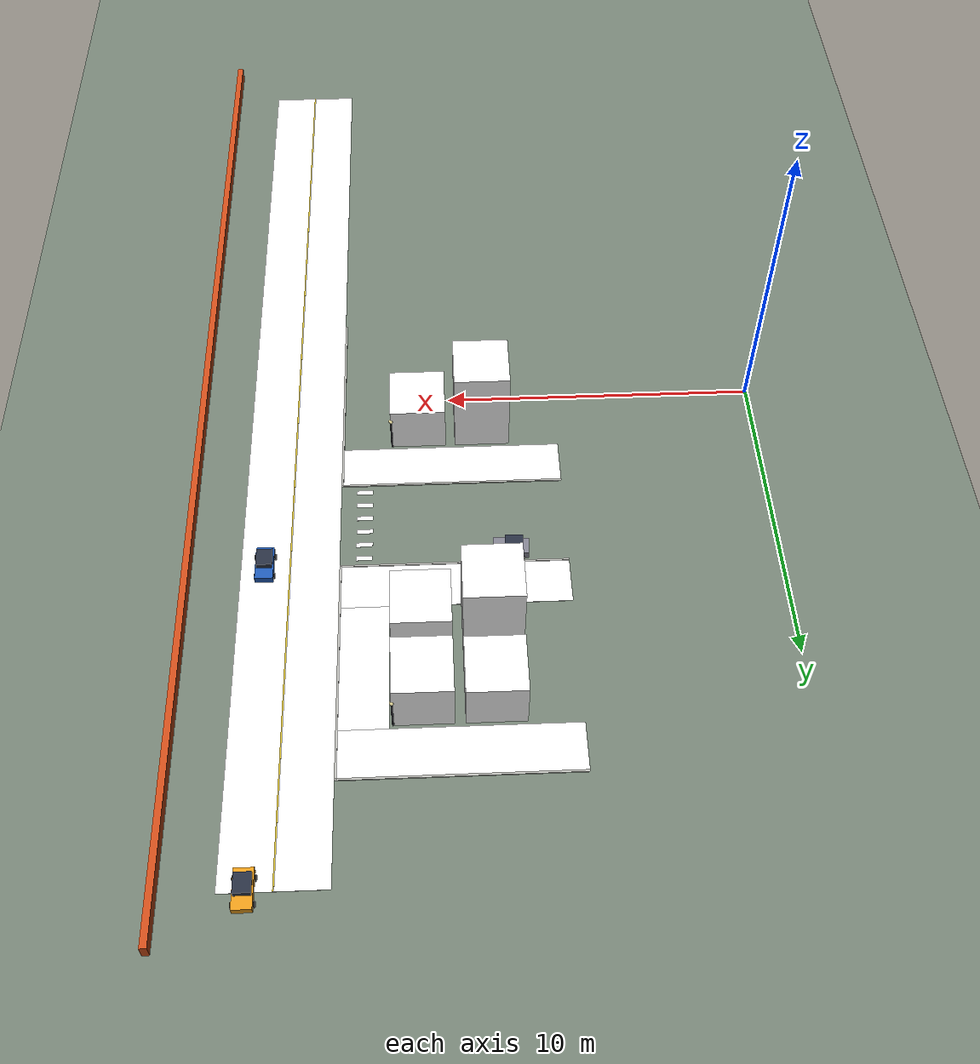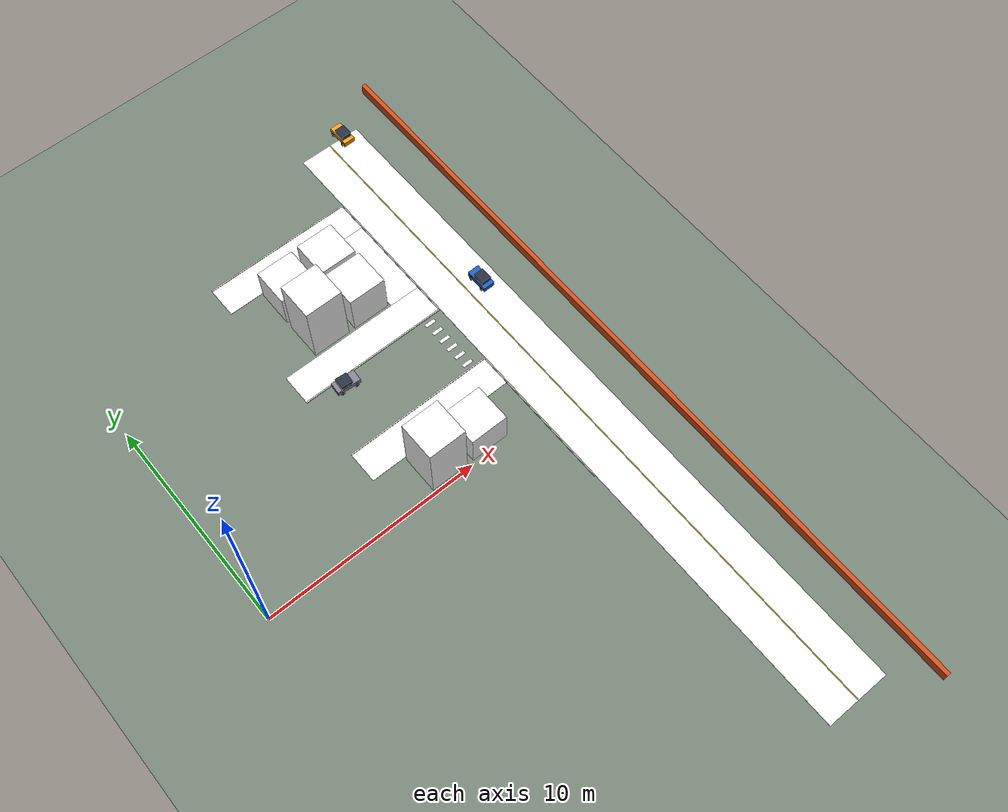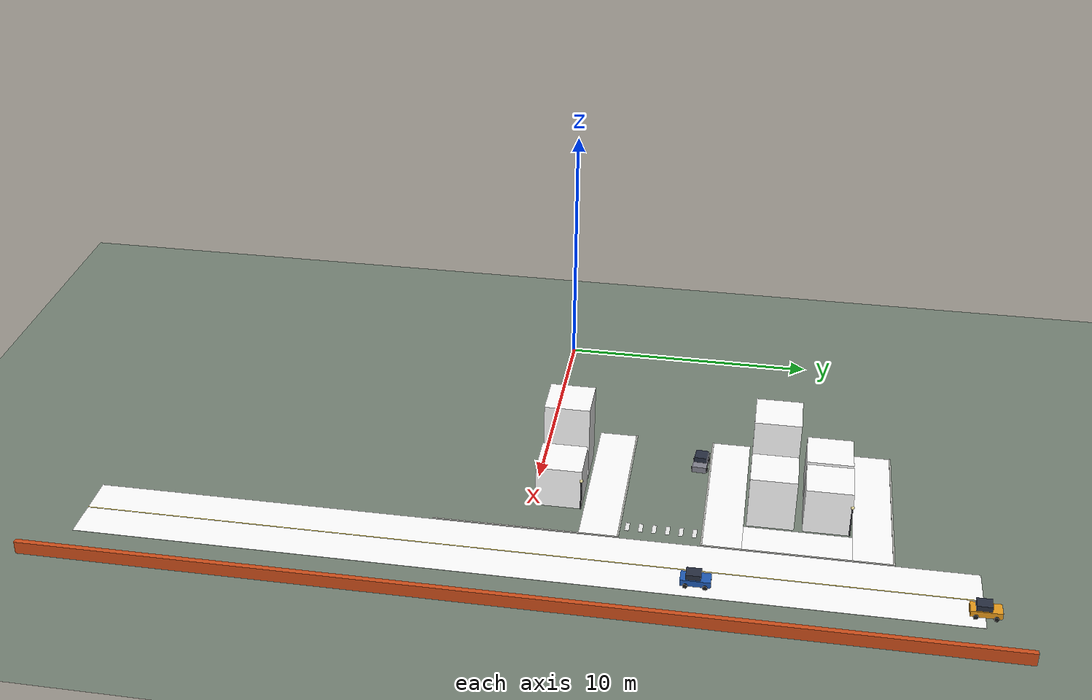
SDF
<sdf version="1.9">
 <world name="limo_city_blocks">
  <model name="ground_plane">
   <static>true</static>
   <link name="link">
    <collision name="collision">
     <geometry><plane><normal>0 0 1</normal><size>53 53</size></plane></geometry>
     <surface><friction><ode><mu>0.8</mu><mu2>0.8</mu2></ode></friction></surface>
    </collision>
    <visual name="visual">
     <geometry><plane><normal>0 0 1</normal><size>53 53</size></plane></geometry>
     <material><ambient>0.45 0.5 0.45 1</ambient><diffuse>0.45 0.5 0.45 1</diffuse></material>
    </visual>
   </link>
  </model>
  <model name="road_ns_3">
   <static>true</static>
   <pose>15.000 0.000 0.005 0 0 0.000</pose>
   <link name="link">
    <visual name="visual">
     <geometry><box><size>3.000 33.000 0.010</size></box></geometry>
     <material>
      <ambient>1 1 1 1</ambient>
      <diffuse>1 1 1 1</diffuse>
      <pbr>
       <metal>
        <albedo_map>model://city_textures/asphalt.png</albedo_map>
        <roughness>0.85</roughness>
        <metalness>0.0</metalness>
       </metal>
      </pbr>
     </material>
    </visual>
   </link>
  </model>
  <model name="line_ns_3">
   <static>true</static>
   <pose>15.000 0.000 0.011 0 0 0.000</pose>
   <link name="link">
    <visual name="visual">
     <geometry><box><size>0.040 33.000 0.002</size></box></geometry>
     <material><ambient>0.85 0.75 0.2 1</ambient><diffuse>0.85 0.75 0.2 1</diffuse></material>
    </visual>
   </link>
  </model>
  <model name="walk_n_2_1">
   <static>true</static>
   <pose>10.000 2.750 0.008 0 0 0.000</pose>
   <link name="link">
    <visual name="visual">
     <geometry><box><size>7.000 1.500 0.012</size></box></geometry>
     <material>
      <ambient>1 1 1 1</ambient>
      <diffuse>1 1 1 1</diffuse>
      <pbr>
       <metal>
        <albedo_map>model://city_textures/paving.png</albedo_map>
        <roughness>0.85</roughness>
        <metalness>0.0</metalness>
       </metal>
      </pbr>
     </material>
    </visual>
   </link>
  </model>
  <model name="walk_s_2_2">
   <static>true</static>
   <pose>10.000 7.250 0.008 0 0 0.000</pose>
   <link name="link">
    <visual name="visual">
     <geometry><box><size>7.000 1.500 0.012</size></box></geometry>
     <material>
      <ambient>1 1 1 1</ambient>
      <diffuse>1 1 1 1</diffuse>
      <pbr>
       <metal>
        <albedo_map>model://city_textures/paving.png</albedo_map>
        <roughness>0.85</roughness>
        <metalness>0.0</metalness>
       </metal>
      </pbr>
     </material>
    </visual>
   </link>
  </model>
  <model name="walk_n_2_2">
   <static>true</static>
   <pose>10.000 12.750 0.008 0 0 0.000</pose>
   <link name="link">
    <visual name="visual">
     <geometry><box><size>7.000 1.500 0.012</size></box></geometry>
     <material>
      <ambient>1 1 1 1</ambient>
      <diffuse>1 1 1 1</diffuse>
      <pbr>
       <metal>
        <albedo_map>model://city_textures/paving.png</albedo_map>
        <roughness>0.85</roughness>
        <metalness>0.0</metalness>
       </metal>
      </pbr>
     </material>
    </visual>
   </link>
  </model>
  <model name="walk_e_2_2">
   <static>true</static>
   <pose>12.750 10.000 0.008 0 0 0.000</pose>
   <link name="link">
    <visual name="visual">
     <geometry><box><size>1.500 4.000 0.012</size></box></geometry>
     <material>
      <ambient>1 1 1 1</ambient>
      <diffuse>1 1 1 1</diffuse>
      <pbr>
       <metal>
        <albedo_map>model://city_textures/paving.png</albedo_map>
        <roughness>0.85</roughness>
        <metalness>0.0</metalness>
       </metal>
      </pbr>
     </material>
    </visual>
   </link>
  </model>
  <model name="curb_n_2_1">
   <static>true</static>
   <pose>10.000 3.470 0.020 0 0 0.000</pose>
   <link name="link">
    <visual name="visual">
     <geometry><box><size>7.000 0.060 0.040</size></box></geometry>
     <material><ambient>0.72 0.72 0.7 1</ambient><diffuse>0.72 0.72 0.7 1</diffuse></material>
    </visual>
   </link>
  </model>
  <model name="curb_e_2_1">
   <static>true</static>
   <pose>13.470 0.000 0.020 0 0 0.000</pose>
   <link name="link">
    <visual name="visual">
     <geometry><box><size>0.060 7.000 0.040</size></box></geometry>
     <material><ambient>0.72 0.72 0.7 1</ambient><diffuse>0.72 0.72 0.7 1</diffuse></material>
    </visual>
   </link>
  </model>
  <model name="curb_s_2_2">
   <static>true</static>
   <pose>10.000 6.530 0.020 0 0 0.000</pose>
   <link name="link">
    <visual name="visual">
     <geometry><box><size>7.000 0.060 0.040</size></box></geometry>
     <material><ambient>0.72 0.72 0.7 1</ambient><diffuse>0.72 0.72 0.7 1</diffuse></material>
    </visual>
   </link>
  </model>
  <model name="curb_n_2_2">
   <static>true</static>
   <pose>10.000 13.470 0.020 0 0 0.000</pose>
   <link name="link">
    <visual name="visual">
     <geometry><box><size>7.000 0.060 0.040</size></box></geometry>
     <material><ambient>0.72 0.72 0.7 1</ambient><diffuse>0.72 0.72 0.7 1</diffuse></material>
    </visual>
   </link>
  </model>
  <model name="curb_e_2_2">
   <static>true</static>
   <pose>13.470 10.000 0.020 0 0 0.000</pose>
   <link name="link">
    <visual name="visual">
     <geometry><box><size>0.060 7.000 0.040</size></box></geometry>
     <material><ambient>0.72 0.72 0.7 1</ambient><diffuse>0.72 0.72 0.7 1</diffuse></material>
    </visual>
   </link>
  </model>
  <model name="lamp_15">
   <static>true</static>
   <pose>11.880 1.880 0 0 0 0</pose>
   <link name="link">
    <collision name="collision">
     <pose>0 0 0.6 0 0 0</pose>
     <geometry><cylinder><radius>0.03</radius><length>1.2</length></cylinder></geometry>
    </collision>
    <visual name="pole">
     <pose>0 0 0.6 0 0 0</pose>
     <geometry><cylinder><radius>0.03</radius><length>1.2</length></cylinder></geometry>
     <material><ambient>0.2 0.2 0.22 1</ambient><diffuse>0.25 0.25 0.28 1</diffuse></material>
    </visual>
    <visual name="head">
     <pose>0 0 1.25 0 0 0</pose>
     <geometry><sphere><radius>0.07</radius></sphere></geometry>
     <material>
      <ambient>0.9 0.85 0.6 1</ambient>
      <diffuse>0.95 0.9 0.65 1</diffuse>
      <emissive>0.5 0.45 0.25 1</emissive>
     </material>
    </visual>
   </link>
  </model>
  <model name="lamp_17">
   <static>true</static>
   <pose>11.880 11.880 0 0 0 0</pose>
   <link name="link">
    <collision name="collision">
     <pose>0 0 0.6 0 0 0</pose>
     <geometry><cylinder><radius>0.03</radius><length>1.2</length></cylinder></geometry>
    </collision>
    <visual name="pole">
     <pose>0 0 0.6 0 0 0</pose>
     <geometry><cylinder><radius>0.03</radius><length>1.2</length></cylinder></geometry>
     <material><ambient>0.2 0.2 0.22 1</ambient><diffuse>0.25 0.25 0.28 1</diffuse></material>
    </visual>
    <visual name="head">
     <pose>0 0 1.25 0 0 0</pose>
     <geometry><sphere><radius>0.07</radius></sphere></geometry>
     <material>
      <ambient>0.9 0.85 0.6 1</ambient>
      <diffuse>0.95 0.9 0.65 1</diffuse>
      <emissive>0.5 0.45 0.25 1</emissive>
     </material>
    </visual>
   </link>
  </model>
  <model name="zebra_23_0">
   <static>true</static>
   <pose>12.750 3.750 0.013 0 0 0.000</pose>
   <link name="link">
    <visual name="visual">
     <geometry><box><size>0.500 0.160 0.002</size></box></geometry>
     <material><ambient>0.92 0.92 0.92 1</ambient><diffuse>0.92 0.92 0.92 1</diffuse></material>
    </visual>
   </link>
  </model>
  <model name="zebra_23_1">
   <static>true</static>
   <pose>12.750 4.250 0.013 0 0 0.000</pose>
   <link name="link">
    <visual name="visual">
     <geometry><box><size>0.500 0.160 0.002</size></box></geometry>
     <material><ambient>0.92 0.92 0.92 1</ambient><diffuse>0.92 0.92 0.92 1</diffuse></material>
    </visual>
   </link>
  </model>
  <model name="zebra_23_2">
   <static>true</static>
   <pose>12.750 4.750 0.013 0 0 0.000</pose>
   <link name="link">
    <visual name="visual">
     <geometry><box><size>0.500 0.160 0.002</size></box></geometry>
     <material><ambient>0.92 0.92 0.92 1</ambient><diffuse>0.92 0.92 0.92 1</diffuse></material>
    </visual>
   </link>
  </model>
  <model name="zebra_23_3">
   <static>true</static>
   <pose>12.750 5.250 0.013 0 0 0.000</pose>
   <link name="link">
    <visual name="visual">
     <geometry><box><size>0.500 0.160 0.002</size></box></geometry>
     <material><ambient>0.92 0.92 0.92 1</ambient><diffuse>0.92 0.92 0.92 1</diffuse></material>
    </visual>
   </link>
  </model>
  <model name="zebra_23_4">
   <static>true</static>
   <pose>12.750 5.750 0.013 0 0 0.000</pose>
   <link name="link">
    <visual name="visual">
     <geometry><box><size>0.500 0.160 0.002</size></box></geometry>
     <material><ambient>0.92 0.92 0.92 1</ambient><diffuse>0.92 0.92 0.92 1</diffuse></material>
    </visual>
   </link>
  </model>
  <model name="zebra_23_5">
   <static>true</static>
   <pose>12.750 6.250 0.013 0 0 0.000</pose>
   <link name="link">
    <visual name="visual">
     <geometry><box><size>0.500 0.160 0.002</size></box></geometry>
     <material><ambient>0.92 0.92 0.92 1</ambient><diffuse>0.92 0.92 0.92 1</diffuse></material>
    </visual>
   </link>
  </model>
  <model name="wall_east">
   <static>true</static>
   <pose>18.100 0.000 0.250 0 0 0.000</pose>
   <link name="link">
    <collision name="collision"><geometry><box><size>0.200 36.000 0.500</size></box></geometry></collision>
    <visual name="visual">
     <geometry><box><size>0.200 36.000 0.500</size></box></geometry>
     <material><ambient>0.8 0.3 0.1 1</ambient><diffuse>0.8 0.3 0.1 1</diffuse></material>
    </visual>
   </link>
  </model>
  <model name="building_12">
   <static>true</static>
   <pose>8.975 1.025 1.544 0 0 0.000</pose>
   <link name="link">
    <collision name="collision"><geometry><box><size>1.750 1.750 3.089</size></box></geometry></collision>
    <visual name="visual">
     <geometry><box><size>1.750 1.750 3.089</size></box></geometry>
     <material>
      <ambient>1 1 1 1</ambient>
      <diffuse>1 1 1 1</diffuse>
      <pbr>
       <metal>
        <albedo_map>model://city_textures/facade_1.png</albedo_map>
        <roughness>0.85</roughness>
        <metalness>0.0</metalness>
       </metal>
      </pbr>
     </material>
    </visual>
   </link>
  </model>
  <model name="building_13">
   <static>true</static>
   <pose>11.025 1.025 0.832 0 0 0.000</pose>
   <link name="link">
    <collision name="collision"><geometry><box><size>1.750 1.750 1.664</size></box></geometry></collision>
    <visual name="visual">
     <geometry><box><size>1.750 1.750 1.664</size></box></geometry>
     <material>
      <ambient>1 1 1 1</ambient>
      <diffuse>1 1 1 1</diffuse>
      <pbr>
       <metal>
        <albedo_map>model://city_textures/facade_2.png</albedo_map>
        <roughness>0.85</roughness>
        <metalness>0.0</metalness>
       </metal>
      </pbr>
     </material>
    </visual>
   </link>
  </model>
  <model name="building_14">
   <static>true</static>
   <pose>8.975 8.975 1.625 0 0 0.000</pose>
   <link name="link">
    <collision name="collision"><geometry><box><size>1.750 1.750 3.250</size></box></geometry></collision>
    <visual name="visual">
     <geometry><box><size>1.750 1.750 3.250</size></box></geometry>
     <material>
      <ambient>1 1 1 1</ambient>
      <diffuse>1 1 1 1</diffuse>
      <pbr>
       <metal>
        <albedo_map>model://city_textures/facade_3.png</albedo_map>
        <roughness>0.85</roughness>
        <metalness>0.0</metalness>
       </metal>
      </pbr>
     </material>
    </visual>
   </link>
  </model>
  <model name="building_15">
   <static>true</static>
   <pose>11.025 8.975 1.038 0 0 0.000</pose>
   <link name="link">
    <collision name="collision"><geometry><box><size>1.750 1.750 2.076</size></box></geometry></collision>
    <visual name="visual">
     <geometry><box><size>1.750 1.750 2.076</size></box></geometry>
     <material>
      <ambient>1 1 1 1</ambient>
      <diffuse>1 1 1 1</diffuse>
      <pbr>
       <metal>
        <albedo_map>model://city_textures/facade_0.png</albedo_map>
        <roughness>0.85</roughness>
        <metalness>0.0</metalness>
       </metal>
      </pbr>
     </material>
    </visual>
   </link>
  </model>
  <model name="building_16">
   <static>true</static>
   <pose>8.975 11.025 0.868 0 0 0.000</pose>
   <link name="link">
    <collision name="collision"><geometry><box><size>1.750 1.750 1.736</size></box></geometry></collision>
    <visual name="visual">
     <geometry><box><size>1.750 1.750 1.736</size></box></geometry>
     <material>
      <ambient>1 1 1 1</ambient>
      <diffuse>1 1 1 1</diffuse>
      <pbr>
       <metal>
        <albedo_map>model://city_textures/facade_3.png</albedo_map>
        <roughness>0.85</roughness>
        <metalness>0.0</metalness>
       </metal>
      </pbr>
     </material>
    </visual>
   </link>
  </model>
  <model name="building_17">
   <static>true</static>
   <pose>11.025 11.025 0.915 0 0 0.000</pose>
   <link name="link">
    <collision name="collision"><geometry><box><size>1.750 1.750 1.830</size></box></geometry></collision>
    <visual name="visual">
     <geometry><box><size>1.750 1.750 1.830</size></box></geometry>
     <material>
      <ambient>1 1 1 1</ambient>
      <diffuse>1 1 1 1</diffuse>
      <pbr>
       <metal>
        <albedo_map>model://city_textures/facade_2.png</albedo_map>
        <roughness>0.85</roughness>
        <metalness>0.0</metalness>
       </metal>
      </pbr>
     </material>
    </visual>
   </link>
  </model>
  <model name="vehicle_1_car">
   <static>false</static>
   <pose>15.750 6.500 0 0 0 1.571</pose>
   <link name="body">
    <kinematic>true</kinematic>
    <collision name="collision">
     <pose>0 0 0.2 0 0 0</pose>
     <geometry><box><size>1.10 0.55 0.40</size></box></geometry>
    </collision>
    <visual name="body_v">
     <pose>0 0 0.20 0 0 0</pose>
     <geometry><box><size>1.10 0.55 0.24</size></box></geometry>
     <material>
      <ambient>0.12 0.35 0.7 1</ambient>
      <diffuse>0.12 0.35 0.7 1</diffuse>
      <specular>0.4 0.4 0.4 1</specular>
     </material>
    </visual>
    <visual name="cabin">
     <pose>-0.08 0 0.42 0 0 0</pose>
     <geometry><box><size>0.55 0.48 0.22</size></box></geometry>
     <material>
      <ambient>0.12 0.15 0.2 1</ambient>
      <diffuse>0.15 0.18 0.25 1</diffuse>
      <specular>0.5 0.5 0.55 1</specular>
     </material>
    </visual>
    <visual name="wheel_0">
     <pose>0.35 0.29 0.09 1.5707 0 0</pose>
     <geometry><cylinder><radius>0.09</radius><length>0.06</length></cylinder></geometry>
     <material><ambient>0.08 0.08 0.08 1</ambient><diffuse>0.1 0.1 0.1 1</diffuse></material>
    </visual>
    <visual name="wheel_1">
     <pose>0.35 -0.29 0.09 1.5707 0 0</pose>
     <geometry><cylinder><radius>0.09</radius><length>0.06</length></cylinder></geometry>
     <material><ambient>0.08 0.08 0.08 1</ambient><diffuse>0.1 0.1 0.1 1</diffuse></material>
    </visual>
    <visual name="wheel_2">
     <pose>-0.35 0.29 0.09 1.5707 0 0</pose>
     <geometry><cylinder><radius>0.09</radius><length>0.06</length></cylinder></geometry>
     <material><ambient>0.08 0.08 0.08 1</ambient><diffuse>0.1 0.1 0.1 1</diffuse></material>
    </visual>
    <visual name="wheel_3">
     <pose>-0.35 -0.29 0.09 1.5707 0 0</pose>
     <geometry><cylinder><radius>0.09</radius><length>0.06</length></cylinder></geometry>
     <material><ambient>0.08 0.08 0.08 1</ambient><diffuse>0.1 0.1 0.1 1</diffuse></material>
    </visual>
   </link>
   <plugin filename="gz-sim-velocity-control-system" name="gz::sim::systems::VelocityControl"/>
   <plugin filename="gz-sim-pose-publisher-system" name="gz::sim::systems::PosePublisher">
    <publish_model_pose>true</publish_model_pose>
    <publish_link_pose>false</publish_link_pose>
    <publish_collision_pose>false</publish_collision_pose>
    <publish_visual_pose>false</publish_visual_pose>
    <publish_sensor_pose>false</publish_sensor_pose>
    <use_pose_vector_msg>false</use_pose_vector_msg>
    <update_frequency>15</update_frequency>
   </plugin>
  </model>
  <model name="vehicle_2_car">
   <static>false</static>
   <pose>15.750 16.500 0 0 0 1.571</pose>
   <link name="body">
    <kinematic>true</kinematic>
    <collision name="collision">
     <pose>0 0 0.2 0 0 0</pose>
     <geometry><box><size>1.10 0.55 0.40</size></box></geometry>
    </collision>
    <visual name="body_v">
     <pose>0 0 0.20 0 0 0</pose>
     <geometry><box><size>1.10 0.55 0.24</size></box></geometry>
     <material>
      <ambient>0.9 0.6 0.1 1</ambient>
      <diffuse>0.9 0.6 0.1 1</diffuse>
      <specular>0.4 0.4 0.4 1</specular>
     </material>
    </visual>
    <visual name="cabin">
     <pose>-0.08 0 0.42 0 0 0</pose>
     <geometry><box><size>0.55 0.48 0.22</size></box></geometry>
     <material>
      <ambient>0.12 0.15 0.2 1</ambient>
      <diffuse>0.15 0.18 0.25 1</diffuse>
      <specular>0.5 0.5 0.55 1</specular>
     </material>
    </visual>
    <visual name="wheel_0">
     <pose>0.35 0.29 0.09 1.5707 0 0</pose>
     <geometry><cylinder><radius>0.09</radius><length>0.06</length></cylinder></geometry>
     <material><ambient>0.08 0.08 0.08 1</ambient><diffuse>0.1 0.1 0.1 1</diffuse></material>
    </visual>
    <visual name="wheel_1">
     <pose>0.35 -0.29 0.09 1.5707 0 0</pose>
     <geometry><cylinder><radius>0.09</radius><length>0.06</length></cylinder></geometry>
     <material><ambient>0.08 0.08 0.08 1</ambient><diffuse>0.1 0.1 0.1 1</diffuse></material>
    </visual>
    <visual name="wheel_2">
     <pose>-0.35 0.29 0.09 1.5707 0 0</pose>
     <geometry><cylinder><radius>0.09</radius><length>0.06</length></cylinder></geometry>
     <material><ambient>0.08 0.08 0.08 1</ambient><diffuse>0.1 0.1 0.1 1</diffuse></material>
    </visual>
    <visual name="wheel_3">
     <pose>-0.35 -0.29 0.09 1.5707 0 0</pose>
     <geometry><cylinder><radius>0.09</radius><length>0.06</length></cylinder></geometry>
     <material><ambient>0.08 0.08 0.08 1</ambient><diffuse>0.1 0.1 0.1 1</diffuse></material>
    </visual>
   </link>
   <plugin filename="gz-sim-velocity-control-system" name="gz::sim::systems::VelocityControl"/>
   <plugin filename="gz-sim-pose-publisher-system" name="gz::sim::systems::PosePublisher">
    <publish_model_pose>true</publish_model_pose>
    <publish_link_pose>false</publish_link_pose>
    <publish_collision_pose>false</publish_collision_pose>
    <publish_visual_pose>false</publish_visual_pose>
    <publish_sensor_pose>false</publish_sensor_pose>
    <use_pose_vector_msg>false</use_pose_vector_msg>
    <update_frequency>15</update_frequency>
   </plugin>
  </model>
  <model name="parked_car_3">
   <static>true</static>
   <pose>8.258 6.150 0 0 0 -0.064</pose>
   <link name="body">
    <collision name="collision">
     <pose>0 0 0.2 0 0 0</pose>
     <geometry><box><size>1.10 0.55 0.40</size></box></geometry>
    </collision>
    <visual name="body_v">
     <pose>0 0 0.20 0 0 0</pose>
     <geometry><box><size>1.10 0.55 0.24</size></box></geometry>
     <material>
      <ambient>0.5 0.5 0.55 1</ambient>
      <diffuse>0.5 0.5 0.55 1</diffuse>
      <specular>0.4 0.4 0.4 1</specular>
     </material>
    </visual>
    <visual name="cabin">
     <pose>-0.08 0 0.42 0 0 0</pose>
     <geometry><box><size>0.55 0.48 0.22</size></box></geometry>
     <material>
      <ambient>0.12 0.15 0.2 1</ambient>
      <diffuse>0.15 0.18 0.25 1</diffuse>
      <specular>0.5 0.5 0.55 1</specular>
     </material>
    </visual>
    <visual name="wheel_0">
     <pose>0.35 0.29 0.09 1.5707 0 0</pose>
     <geometry><cylinder><radius>0.09</radius><length>0.06</length></cylinder></geometry>
     <material><ambient>0.08 0.08 0.08 1</ambient><diffuse>0.1 0.1 0.1 1</diffuse></material>
    </visual>
    <visual name="wheel_1">
     <pose>0.35 -0.29 0.09 1.5707 0 0</pose>
     <geometry><cylinder><radius>0.09</radius><length>0.06</length></cylinder></geometry>
     <material><ambient>0.08 0.08 0.08 1</ambient><diffuse>0.1 0.1 0.1 1</diffuse></material>
    </visual>
    <visual name="wheel_2">
     <pose>-0.35 0.29 0.09 1.5707 0 0</pose>
     <geometry><cylinder><radius>0.09</radius><length>0.06</length></cylinder></geometry>
     <material><ambient>0.08 0.08 0.08 1</ambient><diffuse>0.1 0.1 0.1 1</diffuse></material>
    </visual>
    <visual name="wheel_3">
     <pose>-0.35 -0.29 0.09 1.5707 0 0</pose>
     <geometry><cylinder><radius>0.09</radius><length>0.06</length></cylinder></geometry>
     <material><ambient>0.08 0.08 0.08 1</ambient><diffuse>0.1 0.1 0.1 1</diffuse></material>
    </visual>
   </link>
  </model>
 </world>
</sdf>
